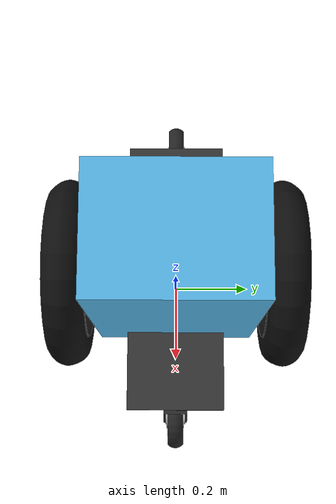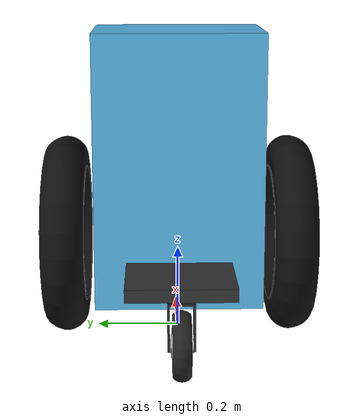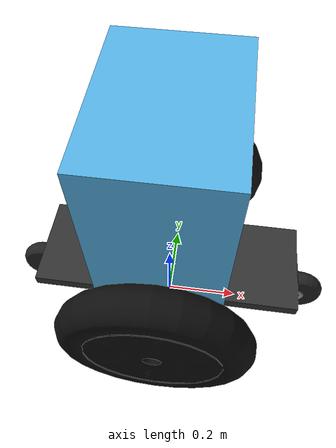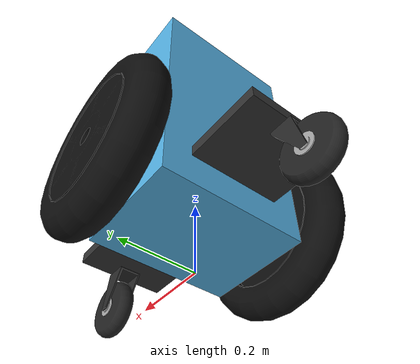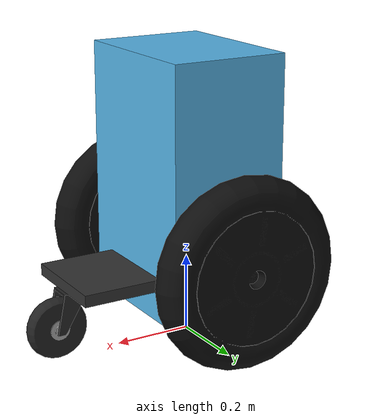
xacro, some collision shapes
<?xml version="1.0"?>

<robot name="robot" xmlns:xacro="http://ros.org/wiki/xacro">

  <xacro:arg name="name" default="robot"/>

  <xacro:include filename="$(find iri_segway_rmp200_description)/urdf/include/segway_rmp200.xacro" />
  <xacro:segway_rmp200 name="$(arg name)" sim_config="$(find iri_diff_drive_gazebo)/config/segway_rmp200.yaml"/>

  <xacro:include filename="$(find iri_segway_rmp200_description)/urdf/include/caster_support_wheels.xacro" />
  <xacro:caster_support_wheels/>

</robot>

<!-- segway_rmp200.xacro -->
<robot xmlns:xacro="http://ros.org/wiki/xacro">

  <xacro:include filename="$(find iri_diff_drive_gazebo)/urdf/diff_drive.gazebo" />
  <xacro:include filename="$(find iri_segway_rmp200_description)/urdf/include/segway_rmp200.gazebo" />
  <xacro:include filename="$(find iri_segway_rmp200_description)/urdf/include/wheel.xacro" />
  <xacro:include filename="$(find iri_segway_rmp200_description)/urdf/include/caster.xacro" />

  <xacro:macro name="segway_rmp200" params="name sim_config">

    <xacro:segway_gazebo name="${name}" sim_config="${sim_config}"/>

    <material name="grey">
      <color rgba="0.7 0.7 0.7 1"/>
    </material>

    <link name="base_footprint">
      <inertial>
        <mass value="1" />
        <origin xyz="0.0 0 0.0" />
        <inertia
          ixx="0.001" ixy="0.0" ixz="0.0"
          iyy="0.001" iyz="0.0"
          izz="0.001" />
      </inertial>
    </link>

    <link name="base_link">
      <visual>

        <origin xyz="0 0 -0.08" rpy="0 0 0"/>
        <geometry>
          <mesh filename="package://iri_segway_rmp200_description/meshes/rmp200_nowheels.dae" scale="1 1 1"/>
        </geometry>

      </visual>
      <collision>
        <origin xyz="0 0 0.175" rpy="0 0 0" />
        <geometry>
          <box size="0.3 0.4 0.65"/>
        </geometry>
      </collision>
      <inertial>
        <mass value="80" />
        <origin xyz="0 0 0.3" />
        <inertia
          ixx="24.0" ixy="0.0" ixz="0.0"
          iyy="24.0" iyz="0.0"
          izz="8.0" />
      </inertial>
    </link>

    <joint name="base_footprint2base_link" type="fixed">
      <parent link="base_footprint"/>
      <child link="base_link"/>
      <origin rpy="0 0 0" xyz="0 0 0.24"/>
      <axis xyz="0 0 1"/>
    </joint>

    <link name="top_plate">
      <inertial>
        <origin xyz="0 0 0" rpy="0 0 0"/>
        <mass value="1"/>
        <inertia
          ixx="0.001" ixy="0.0" ixz="0.0"
          iyy="0.001" iyz="0.0"
          izz="0.001"/>
      </inertial>
      <collision>
        <origin xyz="0 0 -0.01" rpy="0 0 0" />
        <geometry>
          <cylinder length="0.02" radius="0.31"/>
        </geometry>
      </collision>
    </link>

    <joint name="base_link2top_plate" type="fixed">
      <parent link="base_link"/>
      <child link="top_plate"/>
      <origin rpy="0 0 0" xyz="0 0 0.51"/>
      <axis xyz="0 0 1"/>
    </joint>

    <!-- wheels -->
    <!-- left wheel -->
    <xacro:segway_wheel prefix="left" parent="base_link" visual_angle="3.14">
      <origin xyz="0 0.2725 0.0" rpy="0 0 0" />
    </xacro:segway_wheel>

    <!-- right wheel -->
    <xacro:segway_wheel prefix="right" parent="base_link" visual_angle="0.0">
      <origin xyz="0 -0.2725 0.0" rpy="0 0 0" />
    </xacro:segway_wheel>

  </xacro:macro>
</robot>

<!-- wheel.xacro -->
<root xmlns:xacro="http://ros.org/wiki/xacro">

  <xacro:include filename="$(find iri_segway_rmp200_description)/urdf/include/wheel.gazebo" />

  <xacro:macro name="segway_wheel" params="prefix parent *origin visual_angle">
    <joint name="${parent}_${prefix}_wheel_joint" type="continuous">
      <xacro:insert_block name="origin" />
      <axis xyz="0 1 0" />
      <anchor xyz="0 0 0" />
      <limit effort="100" velocity="100" />
      <parent link="${parent}" />
      <child link="${prefix}_wheel_link" />
      <dynamics damping="0.7" friction="0.2" />
    </joint>

    <link name="${prefix}_wheel_link">
      <inertial>
        <mass value="5" />
        <origin xyz=" 0 0 0 " />
        <inertia  ixx="0.076" ixy="0.0" ixz="0.0"
                  iyy="0.144" iyz="0.0"
                  izz="0.076" />
      </inertial>
      <visual>
        <origin xyz="0 0 0" rpy="0 0 ${visual_angle}" />
        <geometry>
          <mesh filename="package://iri_segway_rmp200_description/meshes/wheel.dae" scale="0.0254 0.0254 0.0254"/>
        </geometry>
      </visual>
      <collision>
        <origin xyz="0 0 0" rpy="1.57 0 0" />
        <geometry>
          <cylinder length="0.001" radius="0.24"/>
        </geometry>
      </collision>
    </link>

    <transmission name="${prefix}_wheel_trans">
      <type>transmission_interface/SimpleTransmission</type>
      <joint name="${parent}_${prefix}_wheel_joint">
        <hardwareInterface>hardware_interface/EffortJointInterface</hardwareInterface>
      </joint>
      <actuator name="${prefix}_wheel_motor">
        <hardwareInterface>hardware_interface/EffortJointInterface</hardwareInterface>
        <mechanicalReduction>1</mechanicalReduction>
      </actuator>
    </transmission>

    <xacro:segway_wheel_gazebo prefix="${prefix}" parent="${parent}"/>

  </xacro:macro>
</root>

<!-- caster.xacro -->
<root xmlns:xacro="http://ros.org/wiki/xacro">

  <xacro:include filename="$(find iri_segway_rmp200_description)/urdf/include/caster.gazebo" />

  <xacro:macro name="segway_caster" params="prefix parent *origin">
    <!-- rear caster set -->
    <link name="${prefix}_support">
      <inertial>
        <mass value="1"/>
        <origin xyz="0 0 0" />
        <inertia
          ixx="0.00375" ixy="0.0" ixz="0.0"
          iyy="0.00375" iyz="0.0"
          izz="0.00375" />
      </inertial>
      <visual>
        <origin xyz="0 0 0" rpy="0 0 0" />
        <geometry>
          <mesh filename="package://iri_segway_rmp200_description/meshes/caster_link.dae" scale="0.0254 0.0254 0.0254"/>
        </geometry>
      </visual>
      <!--no collision-->
    </link>

    <joint name="${parent}_${prefix}_support_joint" type="continuous">
      <xacro:insert_block name="origin" />
      <parent link="${parent}" />
      <child link="${prefix}_support"/>
      <axis xyz="0 0 1" />
      <limit effort="0.1" velocity="100"/>
      <dynamics damping="0.1" friction="0.0"/>
    </joint>

    <transmission name="${prefix}_yaw_trans">
      <type>transmission_interface/SimpleTransmission</type>
      <joint name="${parent}_${prefix}_support_joint">
        <hardwareInterface>hardware_interface/EffortJointInterface</hardwareInterface>
      </joint>
      <actuator name="${prefix}_yaw_motor">
        <hardwareInterface>hardware_interface/EffortJointInterface</hardwareInterface>
        <mechanicalReduction>1</mechanicalReduction>
      </actuator>
    </transmission>

    <link name="${prefix}_caster_wheel">
      <inertial>
        <mass value="2" />
        <origin xyz="0 0 0" rpy="0 0 0" />
        <inertia
          ixx="0.003" ixy="0.0" ixz="0.0"
          iyy="0.00581" iyz="0.0"
          izz="0.003" />
      </inertial>
      <visual>
        <origin xyz="0 0 0" rpy="0 0 0" />
        <geometry>
          <mesh filename="package://iri_segway_rmp200_description/meshes/caster_wheel.dae" scale="1 1 1"/>
        </geometry>
      </visual>
      <collision>
        <origin xyz="0 0 0" rpy="1.57 0 0" />
        <geometry>
          <cylinder length="0.001" radius="0.083"/>
        </geometry>
      </collision>
    </link>

    <joint name="${prefix}_caster_wheel_joint" type="continuous">
      <origin xyz="-0.0397 0 -0.0918" rpy="0 0 0" />
      <parent link="${prefix}_support" />
      <child link="${prefix}_caster_wheel" />
      <axis xyz="0 1 0" />
      <limit effort="1" velocity="100"/>
      <dynamics damping="0.0" friction="0.0"/>
    </joint>

    <transmission name="${prefix}_caster_wheel_trans">
      <type>transmission_interface/SimpleTransmission</type>
      <joint name="${prefix}_caster_wheel_joint">
        <hardwareInterface>hardware_interface/EffortJointInterface</hardwareInterface>
      </joint>
      <actuator name="${prefix}_caster_wheel_motor">
        <hardwareInterface>hardware_interface/EffortJointInterface</hardwareInterface>
        <mechanicalReduction>1</mechanicalReduction>
      </actuator>
    </transmission>

    <xacro:segway_caster_gazebo prefix="${prefix}" parent="${parent}"/>
  </xacro:macro>
</root>

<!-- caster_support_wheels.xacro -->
<robot xmlns:xacro="http://ros.org/wiki/xacro">

  <xacro:include filename="$(find iri_segway_rmp200_description)/urdf/include/caster.xacro" />

  <xacro:macro name="caster_support_wheels">

    <link name="caster_support">
      <inertial>
        <origin xyz="0 0 0" rpy="0 0 0"/>
        <mass value="1"/>
        <inertia
          ixx="0.001" ixy="0.0" ixz="0.0"
          iyy="0.001" iyz="0.0"
          izz="0.001"/>
      </inertial>
      <visual>
       <origin xyz="0 0 -0.055" rpy="0 0 0" />
       <geometry>
         <box size="0.7 0.25 0.03"/>
       </geometry>
       <material name="dark_grey">
         <color rgba="0.2 0.2 0.2 1"/>
       </material>
      </visual>
      <collision>
       <origin xyz="0 0 -0.055" rpy="0 0 0" />
       <geometry>
         <box size="0.7 0.25 0.03"/>
       </geometry>
      </collision>
    </link>

    <gazebo reference="caster_support">
      <material>Gazebo/FlatBlack</material>
    </gazebo>

    <joint name="base_link2caster_support" type="fixed">
      <parent link="base_link"/>
      <child link="caster_support"/>
      <origin rpy="0 0 0" xyz="0 0 0.005"/>
      <axis xyz="0 0 1"/>
    </joint>

    <!-- front caster set -->
    <xacro:segway_caster prefix="front" parent="caster_support">
      <origin xyz="0.3292 0 -0.07" rpy="0 0 3.14159" />
    </xacro:segway_caster>

    <!-- rear caster set -->
    <xacro:segway_caster prefix="rear" parent="caster_support">
      <origin xyz="-0.3292 0 -0.07" rpy="0 0 0" />
    </xacro:segway_caster>

  </xacro:macro>
</robot>
